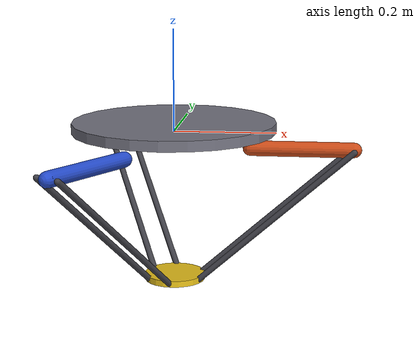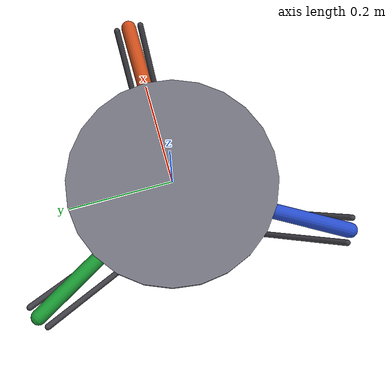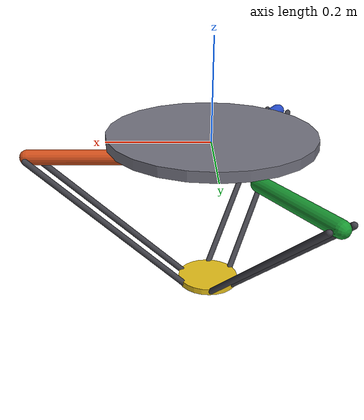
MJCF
<mujoco model="delta_robot">
  <compiler angle="radian"/>

  <option timestep="0.001" integrator="implicitfast" gravity="0 0 0"/>
  <asset>
    <texture type="skybox" builtin="flat" rgb1="1 1 1" rgb2="1 1 1" width="100" height="100"/>
  </asset>
  <default>
    <geom contype="0" conaffinity="0" density="1200"/>
    <joint damping="0.01"/>
    <default class="rod">
      <joint type="ball" damping="0.002"/>
      <geom type="capsule" size="0.006" rgba="0.25 0.25 0.28 1"/>
    </default>
  </default>

  <visual>
    <headlight ambient="0.4 0.4 0.4" diffuse="0.6 0.6 0.6"/>
  </visual>

  <worldbody>
    <site name="base_frame" pos="0 0 0" size="0.008" rgba="1 0 0 1"/>
    <geom name="base_plate" type="cylinder" pos="0 0 0.01" size="0.20 0.01"
          rgba="0.45 0.45 0.5 1"/>

    <body name="upper_arm_1" pos="0.15 0 -0.03" euler="0 0 0">
      <joint name="theta1" type="hinge" axis="0 1 0" range="-1.0 1.6" damping="0.05"/>
      <geom type="capsule" fromto="0 0 0 0.2 0 0" size="0.015" rgba="0.8 0.3 0.1 1"/>
      <body name="rod_1a" pos="0.2 0.025 0">
        <joint name="ball_1a" class="rod"/>
        <geom class="rod" fromto="0 0 0 -0.3 0 -0.2645751"/>
      </body>
      <body name="rod_1b" pos="0.2 -0.025 0">
        <joint name="ball_1b" class="rod"/>
        <geom class="rod" fromto="0 0 0 -0.3 0 -0.2645751"/>
      </body>
    </body>

    <body name="upper_arm_2" pos="-0.075 0.1299038 -0.03" euler="0 0 2.0943951">
      <joint name="theta2" type="hinge" axis="0 1 0" range="-1.0 1.6" damping="0.05"/>
      <geom type="capsule" fromto="0 0 0 0.2 0 0" size="0.015" rgba="0.1 0.6 0.2 1"/>
      <body name="rod_2a" pos="0.2 0.025 0">
        <joint name="ball_2a" class="rod"/>
        <geom class="rod" fromto="0 0 0 -0.3 0 -0.2645751"/>
      </body>
      <body name="rod_2b" pos="0.2 -0.025 0">
        <joint name="ball_2b" class="rod"/>
        <geom class="rod" fromto="0 0 0 -0.3 0 -0.2645751"/>
      </body>
    </body>

    <body name="upper_arm_3" pos="-0.075 -0.1299038 -0.03" euler="0 0 4.1887902">
      <joint name="theta3" type="hinge" axis="0 1 0" range="-1.0 1.6" damping="0.05"/>
      <geom type="capsule" fromto="0 0 0 0.2 0 0" size="0.015" rgba="0.15 0.3 0.8 1"/>
      <body name="rod_3a" pos="0.2 0.025 0">
        <joint name="ball_3a" class="rod"/>
        <geom class="rod" fromto="0 0 0 -0.3 0 -0.2645751"/>
      </body>
      <body name="rod_3b" pos="0.2 -0.025 0">
        <joint name="ball_3b" class="rod"/>
        <geom class="rod" fromto="0 0 0 -0.3 0 -0.2645751"/>
      </body>
    </body>

    <body name="platform" pos="0 0 -0.2945751">
      <freejoint name="platform_free"/>
      <geom type="cylinder" size="0.06 0.006" rgba="0.9 0.75 0.1 1"/>
      <site name="ee" pos="0 0 -0.006" size="0.006" rgba="1 0 1 1"/>
    </body>
  </worldbody>

  <equality>
    <connect solref="0.002 1" body1="rod_1a" body2="platform" anchor="-0.3 0 -0.2645751"/>
    <connect solref="0.002 1" body1="rod_1b" body2="platform" anchor="-0.3 0 -0.2645751"/>
    <connect solref="0.002 1" body1="rod_2a" body2="platform" anchor="-0.3 0 -0.2645751"/>
    <connect solref="0.002 1" body1="rod_2b" body2="platform" anchor="-0.3 0 -0.2645751"/>
    <connect solref="0.002 1" body1="rod_3a" body2="platform" anchor="-0.3 0 -0.2645751"/>
    <connect solref="0.002 1" body1="rod_3b" body2="platform" anchor="-0.3 0 -0.2645751"/>
  </equality>

  <actuator>
    <velocity  name="act1" joint="theta1" kv="10" ctrlrange="-104.72 104.72"/>
    <velocity  name="act2" joint="theta2" kv="10" ctrlrange="-104.72 104.72"/>
    <velocity  name="act3" joint="theta3" kv="10" ctrlrange="-104.72 104.72"/>
  </actuator>

  <sensor>
    <framepos name="ee_pos" objtype="site" objname="ee"/>
    <framelinvel name="ee_vel" objtype="site" objname="ee"/>
  </sensor>
</mujoco>
